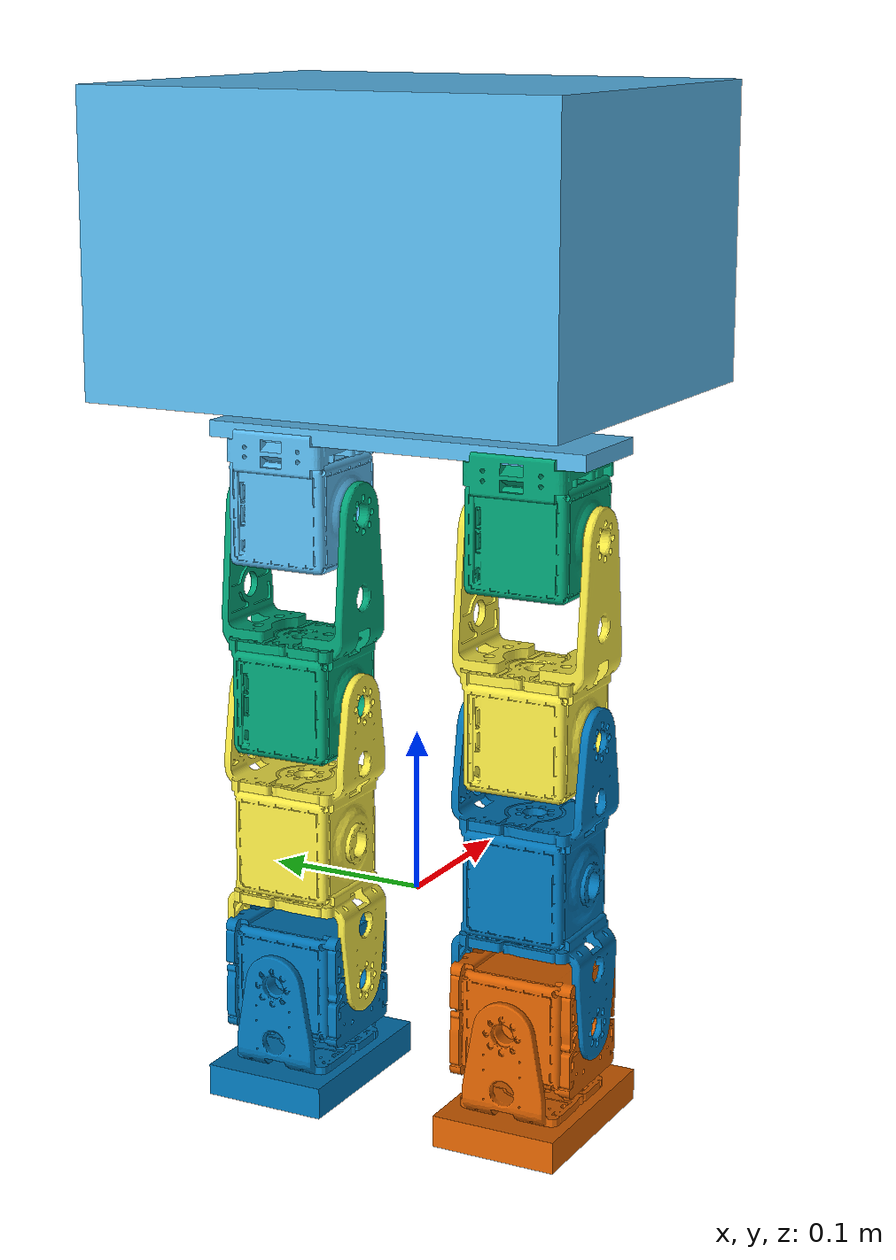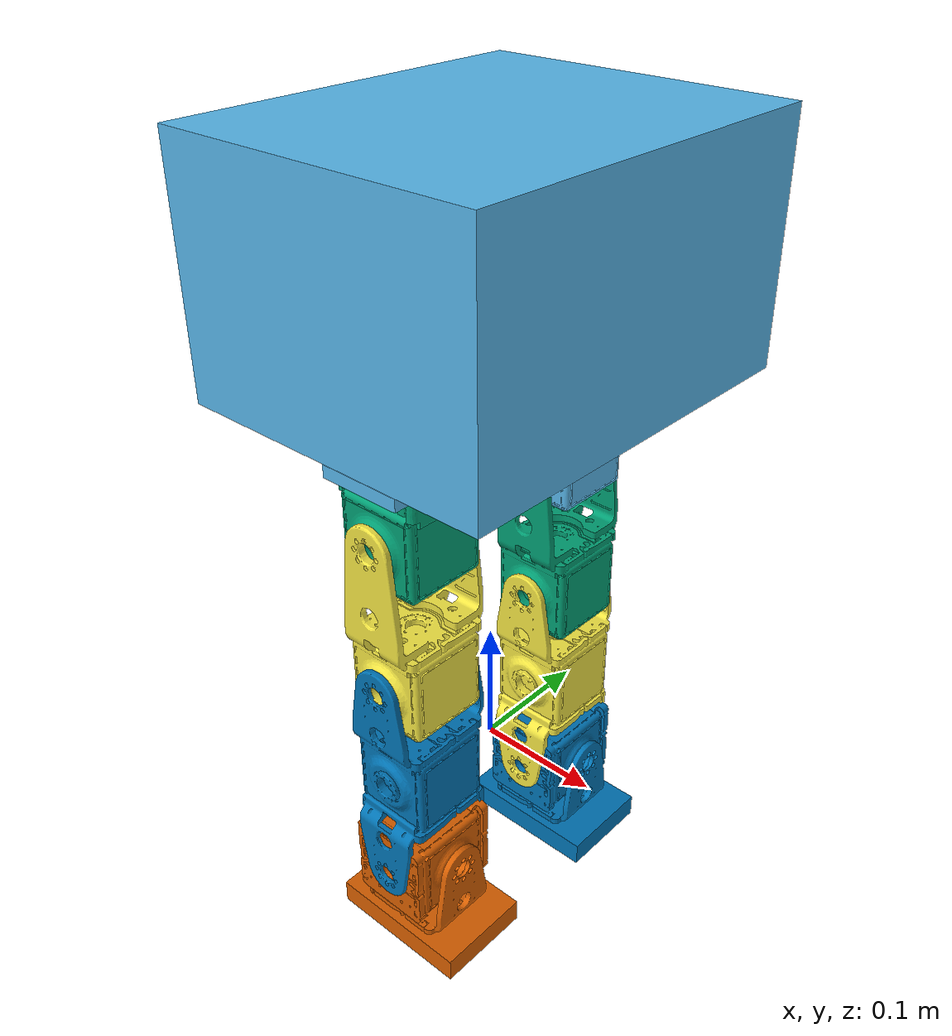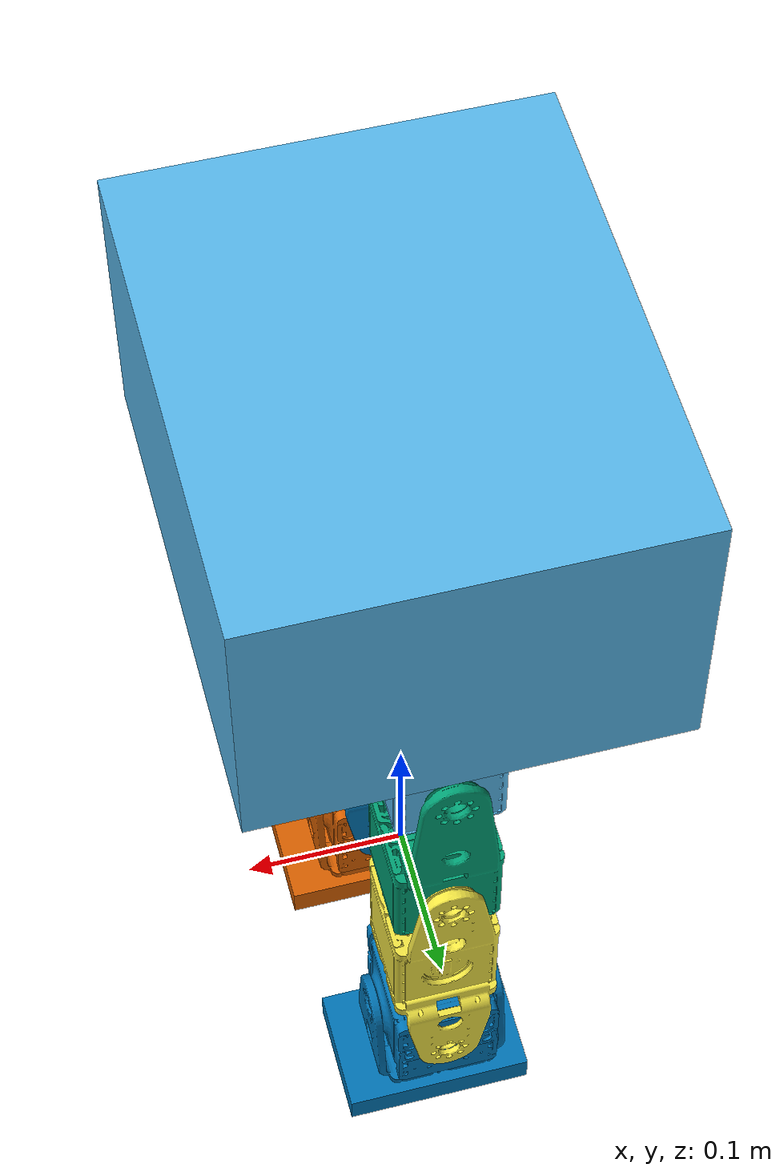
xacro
<?xml version="1.0"?>
<robot name="softlegs" xmlns:xacro="http://www.ros.org/wiki/xacro">

  <xacro:include filename="$(find softlegs_description)/urdf/leg_light.xacro"/>

  <link name="world"/>
  <joint name="body_base" type="floating">
    <origin xyz="0 0 0.3" rpy="0 0 0"/>
    <parent link="world"/>
    <child link="root_link"/>
  </joint>
  <link name="root_link">
      <inertial>
          <origin xyz="0 0 0.2" rpy="0 0 0"/>
          <mass value="1.7"/>
          <inertia ixx="0.001" iyy="0.001" izz="0.001" ixy="0" ixz="0" iyz="0"/>
      </inertial>
      <visual>
            <origin xyz="0 0 -0.017" rpy="0 0 0"/>
            <geometry>
				        <box size="0.066 0.25 0.01" />
            </geometry>
       </visual>
      <visual>
            <origin xyz="0 0 0.1" rpy="0 0 0"/>
            <geometry>
                <box size="0.25 0.3 0.18" />
            </geometry>
       </visual>

       <collision>
            <origin xyz="0 0 -0.017" rpy="0 0 0"/>
            <geometry>
				<box size="0.066 0.25 0.01" />
            </geometry>
       </collision>
       <collision>
            <origin xyz="0 0 0.1" rpy="0 0 0"/>
            <geometry>
                <box size="0.25 0.3 0.18" />
            </geometry>
       </collision>
  </link>

  # Left leg
  <xacro:leg_light type="left" distance="0 -0.08 -0.022" ns="softlegs">
  </xacro:leg_light>

  # Right leg
  <xacro:leg_light type="right" distance="0 0.08 -0.022" ns="softlegs">
  </xacro:leg_light>

  <gazebo>
      <self_collide>1</self_collide>
  </gazebo>

</robot>

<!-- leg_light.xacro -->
<robot xmlns:xacro="http://www.ros.org/wiki/xacro">

  <xacro:macro name="leg_light" params="type distance ns">

    <joint name="${type}_base" type="fixed">
      <origin xyz="${distance}" rpy="0 0 0"/>
      <parent link="root_link"/>
      <child link="${type}_base_link"/>
    </joint>

    # Leg Base
     <link name="${type}_base_link">
          <inertial>
              <origin xyz="0 0 0" rpy="0 0 0"/>
              <mass value="0.45"/>
              <inertia ixx="0.001" iyy="0.001" izz="0.001" ixy="0" ixz="0" iyz="0"/>
          </inertial>
          <visual>
              <origin xyz="0 0 0" rpy="0 0 0"/>
              <geometry>
          <mesh filename="package://simplecube_description/meshes/qb_meshes/stl/qb_double_flat_flange_m.stl" />
              </geometry>
          </visual>
          <visual>
              <origin xyz="0 0.033 -0.046" rpy="1.57 3.14 0"/>
              <geometry>
          <mesh filename="package://simplecube_description/meshes/qb_meshes/stl/qbmove_frame_m.stl" />
              </geometry>
          </visual>
          <collision>
              <origin xyz="0 0 0" rpy="0 0 0"/>
              <geometry>
                  <mesh filename="package://simplecube_description/meshes/qb_meshes/stl/qb_double_flat_flange_m.stl" />
              </geometry>
          </collision>
          <collision>
              <origin xyz="0 0.033 -0.046" rpy="1.57 3.14 0"/>
              <geometry>
                  <mesh filename="package://simplecube_description/meshes/qb_meshes/stl/qbmove_frame_m.stl" />
              </geometry>
          </collision>
      </link>

    # Right Joint n1
      <joint name="${type}_J1" type="revolute">
          <origin xyz="0 0 -0.046" rpy="1.57 0 0"/>
          <parent link="${type}_base_link"/>
          <child link="${type}_link1"/>
      <limit effort="30" velocity="1.0" lower="-1.57" upper="1.57" />
          <axis xyz="0 0 1"/>
      </joint>
    <link name="${type}_link1">
          <inertial>
              <origin xyz="0 -0.10 0" rpy="0 0 0"/>
              <mass value="0.7"/>
              <inertia ixx="0.001" iyy="0.001" izz="0.001" ixy="0" ixz="0" iyz="0"/>
          </inertial>
      <visual>
              <origin xyz="0 0 0" rpy="0 0 0"/>
              <geometry>
          <mesh filename="package://softlegs_description/light_meshes/qb_c_flange_long_and_cube_m.stl"/>
              </geometry>
          </visual>
          <collision>
              <origin xyz="0 0 0" rpy="0 0 0"/>
              <geometry>
                  <mesh filename="package://softlegs_description/light_meshes/qb_c_flange_long_and_cube_m.stl"/>
              </geometry>
          </collision>
      </link>

    # Right Joint n2
      <joint name="${type}_J2" type="revolute">
          <origin xyz="0 -0.12 0" rpy="0 0 0"/>
          <parent link="${type}_link1"/>
          <child link="${type}_link2"/>
      <limit effort="30" velocity="1.0" lower="-1.57" upper="1.57" />
          <axis xyz="0 0 1"/>
      </joint>
    <link name="${type}_link2">
          <inertial>
              <origin xyz="0 -0.09 0" rpy="0 0 0"/>
              <mass value="1"/>
              <inertia ixx="0.001" iyy="0.001" izz="0.001" ixy="0" ixz="0" iyz="0"/>
          </inertial>
      <visual>
              <origin xyz="0 0 0" rpy="0 0 0"/>
              <geometry>
          <mesh filename="package://softlegs_description/light_meshes/qb_c_flang_cube_and_c_flange_m.stl"/>
              </geometry>
          </visual>
          <collision>
              <origin xyz="0 0 0" rpy="0 0 0"/>
              <geometry>
                  <mesh filename="package://softlegs_description/light_meshes/qb_c_flang_cube_and_c_flange_m.stl"/>
              </geometry>
          </collision>
      </link>

    <!-- Right Joint n3 -->
       <joint name="${type}_J3" type="revolute">
          <origin xyz="0 -0.18 0" rpy="0 0 0"/>
          <parent link="${type}_link2"/>
          <child link="${type}_link3"/>
      <limit effort="30" velocity="1.0" lower="-1.57" upper="1.57" />
          <axis xyz="0 0 1"/>
      </joint>
    <link name="${type}_link3">
          <inertial>
              <origin xyz="0 -0.05 0" rpy="0 0 0"/>
              <mass value="0.55"/>
              <inertia ixx="0.001" iyy="0.001" izz="0.001" ixy="0" ixz="0" iyz="0"/>
          </inertial>
      <visual>
              <origin xyz="0 0 0" rpy="1.57 0 1.57"/>
              <geometry>
          <mesh filename="package://softlegs_description/light_meshes/qb_cube_2_flat_flange_m.stl"/>
              </geometry>
          </visual>
      <visual>
              <origin xyz="0 -0.056 0" rpy="1.57 0 0"/>
              <geometry>
          <mesh filename="package://simplecube_description/meshes/qb_meshes/stl/qb_c_flange_m.stl" />
              </geometry>
          </visual>
      <visual>
              <origin xyz="0.005 -0.064 0" rpy="0 0 0"/>
              <geometry>
          <box size="0.12 0.02 0.08" />
              </geometry>
          </visual>
          <collision>
              <origin xyz="0 0 0" rpy="1.57 0 1.57"/>
              <geometry>
                  <mesh filename="package://softlegs_description/light_meshes/qb_cube_2_flat_flange_m.stl"/>
              </geometry>
          </collision>
          <collision>
              <origin xyz="0 -0.056 0" rpy="1.57 0 0"/>
              <geometry>
                  <mesh filename="package://simplecube_description/meshes/qb_meshes/stl/qb_c_flange_m.stl" />
              </geometry>
          </collision>
          <collision>
              <origin xyz="0.005 -0.064 0" rpy="0 0 0"/>
              <geometry>
                  <box size="0.12 0.02 0.08" />
              </geometry>
          </collision>
      </link>

    <!-- Right Foot EE -->
    <joint name="${type}_EE" type="fixed">
          <origin xyz="0 -0.074 0" rpy="0 0 0"/>
          <parent link="${type}_link3"/>
          <child link="${type}_EE"/>
          <axis xyz="0 0 1"/>
      </joint>
    <link name="${type}_EE">
    </link>
      <joint name="${type}_EE_front" type="fixed">
          <origin xyz="0.065 -0.074 0" rpy="0 0 0"/>
          <parent link="${type}_link3"/>
          <child link="${type}_EE_front"/>
          <axis xyz="0 0 1"/>
      </joint>
    <link name="${type}_EE_front">
    </link>
    <joint name="${type}_EE_back" type="fixed">
          <origin xyz="-0.055 -0.074 0" rpy="0 0 0"/>
          <parent link="${type}_link3"/>
          <child link="${type}_EE_back"/>
          <axis xyz="0 0 1"/>
      </joint>
    <link name="${type}_EE_back">
    </link>

    # GAZEBO PLUGIN
    <gazebo>
        <plugin name="${type}_sea_1" filename="libsea_plugin.so">
            <joint>${type}_J1</joint>
            <namespace>${ns}</namespace>
            <stiffness>50</stiffness>
            <pub_eltau>false</pub_eltau>
            <pub_state>true</pub_state>
            <sub_ext_tau>false</sub_ext_tau>
        </plugin>
    </gazebo>

    <gazebo>
        <plugin name="${type}_sea_2" filename="libsea_plugin.so">
            <joint>${type}_J2</joint>
            <namespace>${ns}</namespace>
            <stiffness>50</stiffness>
            <pub_eltau>false</pub_eltau>
            <pub_state>true</pub_state>
            <sub_ext_tau>false</sub_ext_tau>
        </plugin>
    </gazebo>

    <gazebo>
        <plugin name="${type}_sea_3" filename="libsea_plugin.so">
            <joint>${type}_J3</joint>
            <namespace>${ns}</namespace>
            <stiffness>50</stiffness>
            <pub_eltau>false</pub_eltau>
            <pub_state>true</pub_state>
            <sub_ext_tau>false</sub_ext_tau>
        </plugin>
    </gazebo>

  </xacro:macro>

</robot>
